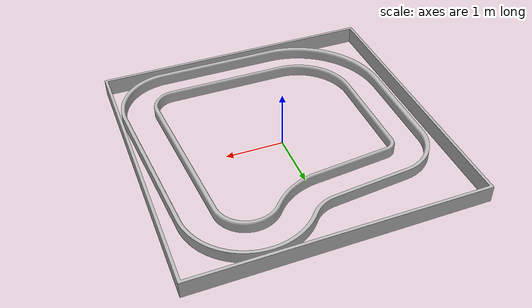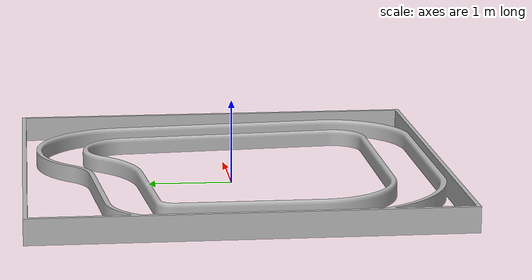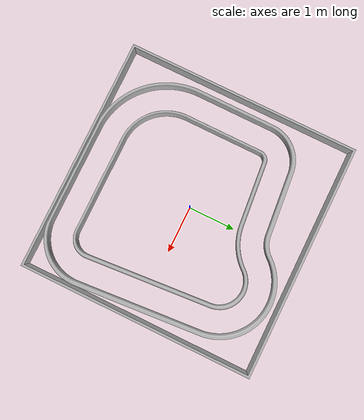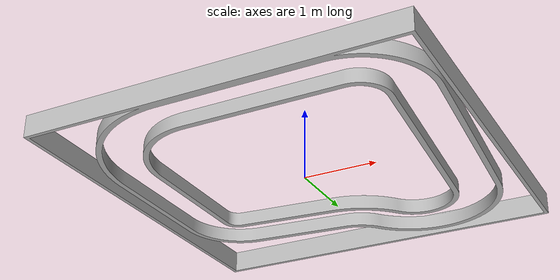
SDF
<?xml version="1.0" ?>
<sdf version="1.5">
  <model name="race">
    <static>true</static>
    <link name="link">
      <pose>0 0 0 0 0 0</pose>
      <collision name="collision">
        <geometry>
            <mesh>
              <uri>
                model://race/mesh/red_scene.stl
              </uri>
              <scale>
                0.5 0.5 1
              </scale>
            </mesh>
        </geometry>
      </collision>
      <visual name="visual">
        <cast_shadows>false</cast_shadows>
        <geometry>
            <mesh>
              <uri>
                model://race/mesh/red_scene.stl
              </uri>
              <scale>
                0.5 0.5 1
              </scale>
            </mesh>
        </geometry>
      </visual>
    </link>
  </model>
</sdf>
